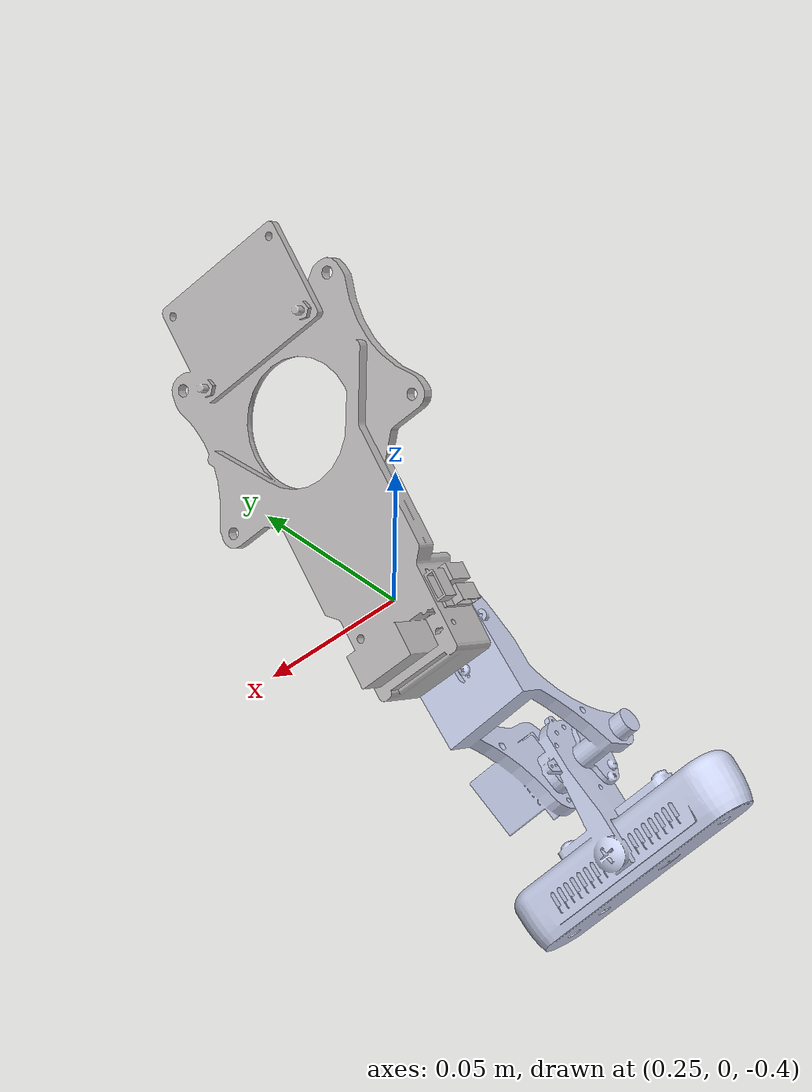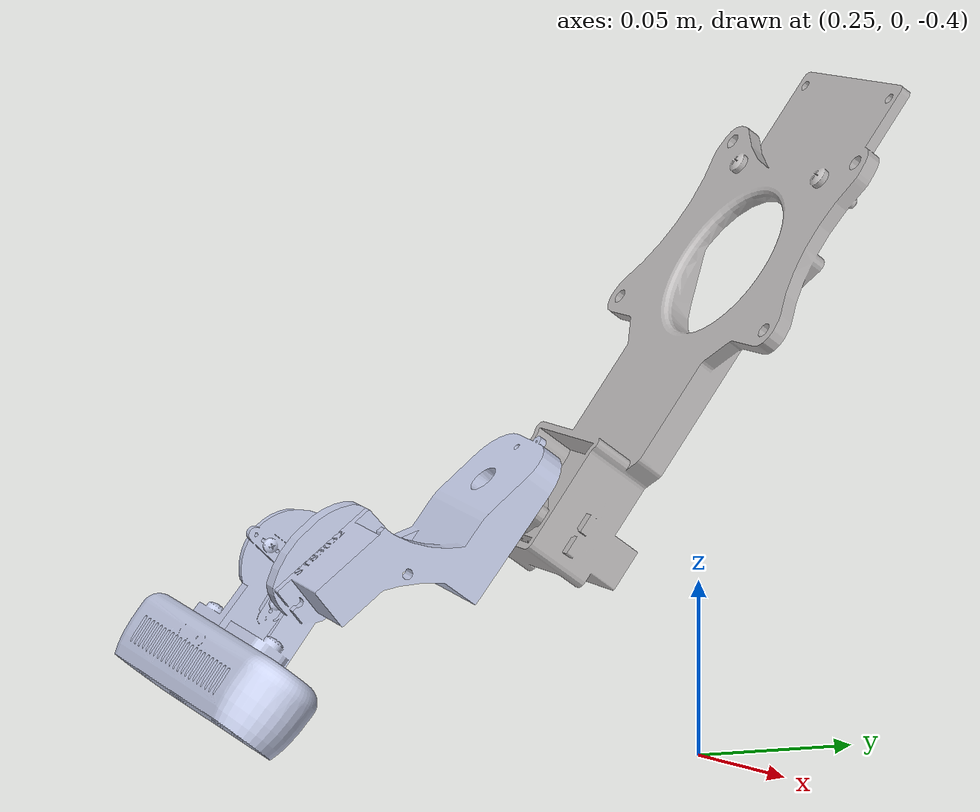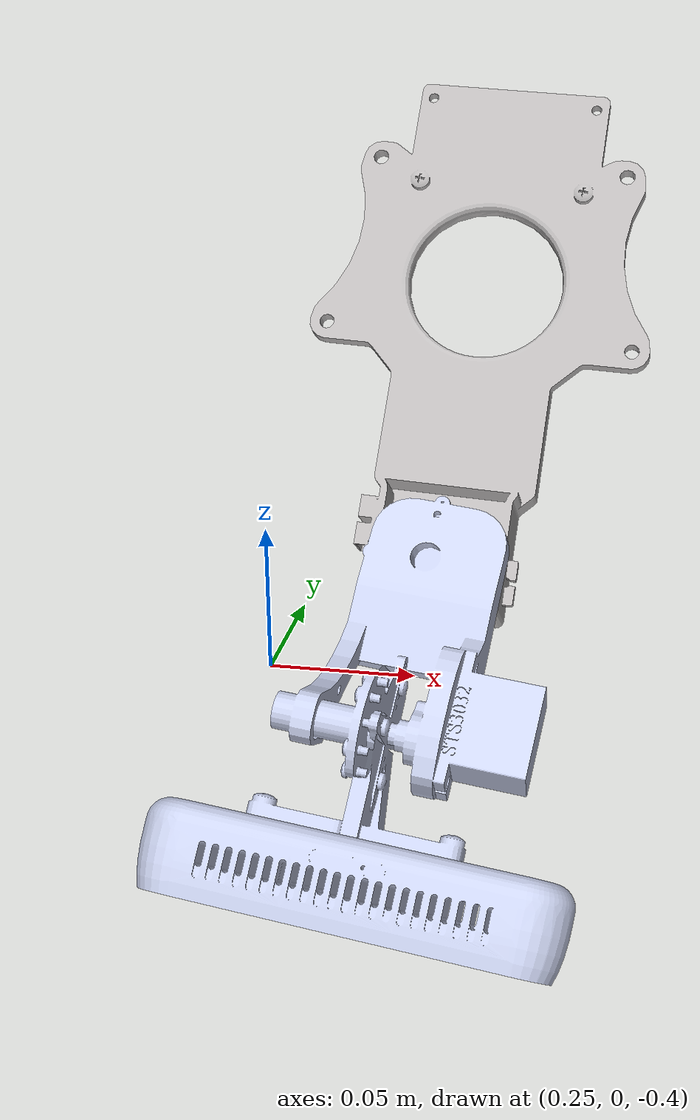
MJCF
<mujoco model="avp_model">
  <compiler angle="radian" meshdir="meshes"/>

  <option gravity="0 0 0"/>

  <asset>
    <mesh name="base_link_mesh" file="base_link.obj"/>
    <mesh name="Yaw_Link_mesh"  file="Yaw_Link.obj"/>
    <mesh name="Pitch_Link_mesh" file="Pitch_Link.obj"/>
  </asset>

  <worldbody>
    <body name="avp_model">
      <freejoint/>
      <geom name="base_link_geom" type="mesh" mesh="base_link_mesh"
            rgba="0.74 0.73 0.73 1"/>
      <geom name="Yaw_Link_geom" type="mesh" mesh="Yaw_Link_mesh"
            pos="0.27999 -0.17008 -0.34728"
            quat="0.447494 -0.892076 0.055096 0.030247"
            rgba="0.79 0.82 0.93 1"/>
      <geom name="Pitch_Link_geom" type="mesh" mesh="Pitch_Link_mesh"
            pos="0.27999 -0.17008 -0.34728"
            quat="0.447494 -0.892076 0.055096 0.030247"
            rgba="0.79 0.82 0.93 1"/>
    </body>
  </worldbody>
</mujoco>
